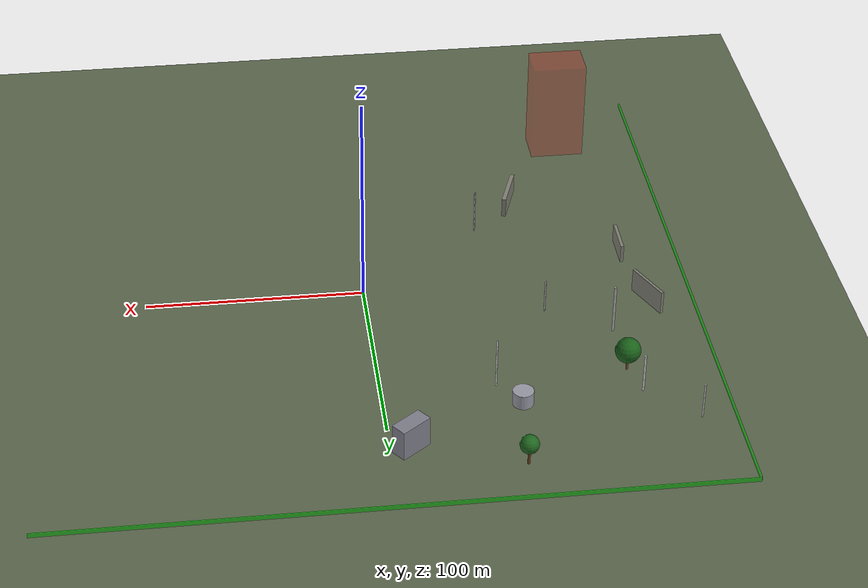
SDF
<sdf version="1.9">
 <world name="training_variant_006">
  <model name="ground_plane">
   <static>true</static>
   <link name="link">
    <collision name="collision">
     <geometry><plane><normal>0 0 1</normal><size>500 500</size></plane></geometry>
     <surface><friction><ode><mu>100</mu><mu2>50</mu2></ode></friction></surface>
    </collision>
    <visual name="visual">
     <geometry><plane><normal>0 0 1</normal><size>500 500</size></plane></geometry>
     <material><ambient>0.35 0.4 0.3 1</ambient><diffuse>0.35 0.4 0.3 1</diffuse></material>
    </visual>
   </link>
  </model>
  <model name="geofence_north">
   <static>true</static>
   <pose>0 150.0 1 0 0 0</pose>
   <link name="link">
    <visual name="visual">
     <geometry><box><size>300.0 0.5 2</size></box></geometry>
     <material>
      <ambient>0 0.8 0 0.6</ambient>
      <diffuse>0 0.8 0 0.6</diffuse>
      <emissive>0 0.2 0 1</emissive>
     </material>
    </visual>
   </link>
  </model>
  <model name="geofence_west">
   <static>true</static>
   <pose>-150.0 0 1 0 0 0</pose>
   <link name="link">
    <visual name="visual">
     <geometry><box><size>0.5 300.0 2</size></box></geometry>
     <material>
      <ambient>0 0.8 0 0.6</ambient>
      <diffuse>0 0.8 0 0.6</diffuse>
      <emissive>0 0.2 0 1</emissive>
     </material>
    </visual>
   </link>
  </model>
  <model name="nfz_2_volume">
   <static>true</static>
   <pose>-109.30489048823372 -116.15220633216012 25.02507445597574 0 0 0</pose>
   <link name="link">
    <visual name="visual">
     <geometry><box><size>25.90237489561391 18.155441028923065 50.05014891195148</size></box></geometry>
     <material><ambient>1 0 0 0.25</ambient><diffuse>1 0 0 0.25</diffuse></material>
    </visual>
   </link>
  </model>
  <model name="obstacle_pole_1">
   <static>true</static>
   <pose>-108.96854140373007 41.456324150693206 11.868041964522185 0 0 0.0</pose>
   <link name="link">
    <visual name="visual">
     <geometry>
      <cylinder><radius>0.5898261438462362</radius><length>23.73608392904437</length></cylinder>
     </geometry>
     <material><ambient>0.65 0.65 0.65 1.0</ambient><diffuse>0.65 0.65 0.65 1.0</diffuse></material>
    </visual>
    <collision name="collision">
     <geometry>
      <cylinder><radius>0.5898261438462362</radius><length>23.73608392904437</length></cylinder>
     </geometry>
    </collision>
   </link>
  </model>
  <model name="obstacle_wall_2">
   <static>true</static>
   <pose>-123.51263008274883 -19.94377028147619 4.415365022803199 0 0 1.567297042484768</pose>
   <link name="link">
    <visual name="visual">
     <geometry><box><size>18.3484552260835 1.5085854988911418 8.830730045606398</size></box></geometry>
     <material><ambient>0.5 0.5 0.45 1.0</ambient><diffuse>0.5 0.5 0.45 1.0</diffuse></material>
    </visual>
    <collision name="collision">
     <geometry><box><size>18.3484552260835 1.5085854988911418 8.830730045606398</size></box></geometry>
    </collision>
   </link>
  </model>
  <model name="obstacle_pole_3">
   <static>true</static>
   <pose>-58.02719171641989 -44.83748787614252 10.99072551534093 0 0 0.0</pose>
   <link name="link">
    <visual name="visual">
     <geometry>
      <cylinder><radius>0.33865140763655305</radius><length>21.98145103068186</length></cylinder>
     </geometry>
     <material><ambient>0.7 0.7 0.7 1.0</ambient><diffuse>0.7 0.7 0.7 1.0</diffuse></material>
    </visual>
    <collision name="collision">
     <geometry>
      <cylinder><radius>0.33865140763655305</radius><length>21.98145103068186</length></cylinder>
     </geometry>
    </collision>
   </link>
  </model>
  <model name="obstacle_pole_4">
   <static>true</static>
   <pose>-135.21048826418954 106.3141081219795 8.825070211591456 0 0 0.0</pose>
   <link name="link">
    <visual name="visual">
     <geometry>
      <cylinder><radius>0.3715744575975428</radius><length>17.65014042318291</length></cylinder>
     </geometry>
     <material><ambient>0.7 0.7 0.7 1.0</ambient><diffuse>0.7 0.7 0.7 1.0</diffuse></material>
    </visual>
    <collision name="collision">
     <geometry>
      <cylinder><radius>0.3715744575975428</radius><length>17.65014042318291</length></cylinder>
     </geometry>
    </collision>
   </link>
  </model>
  <model name="obstacle_wall_8">
   <static>true</static>
   <pose>-128.94347733105735 21.248478264428428 5.6593015711721995 0 0 2.0077017126568104</pose>
   <link name="link">
    <visual name="visual">
     <geometry><box><size>21.72372777396623 1.4223040001081664 11.318603142344399</size></box></geometry>
     <material><ambient>0.48 0.48 0.44 1.0</ambient><diffuse>0.48 0.48 0.44 1.0</diffuse></material>
    </visual>
    <collision name="collision">
     <geometry><box><size>21.72372777396623 1.4223040001081664 11.318603142344399</size></box></geometry>
    </collision>
   </link>
  </model>
  <model name="obstacle_building_9">
   <static>true</static>
   <pose>-8.819301693982268 112.72898037307885 7.134403814662522 0 0 0.6509597289842135</pose>
   <link name="link">
    <visual name="visual">
     <geometry><box><size>15.255683504827452 7.395678996261646 14.268807629325044</size></box></geometry>
     <material><ambient>0.5 0.5 0.55 1.0</ambient><diffuse>0.5 0.5 0.55 1.0</diffuse></material>
    </visual>
    <collision name="collision">
     <geometry><box><size>15.255683504827452 7.395678996261646 14.268807629325044</size></box></geometry>
    </collision>
   </link>
  </model>
  <model name="obstacle_tank_10">
   <static>true</static>
   <pose>-60.33687777212573 88.44235684406826 3.465457994313822 0 0 0.0</pose>
   <link name="link">
    <visual name="visual">
     <geometry><cylinder><radius>4.658123410437648</radius><length>6.930915988627644</length></cylinder></geometry>
     <material><ambient>0.6 0.6 0.65 1.0</ambient><diffuse>0.6 0.6 0.65 1.0</diffuse></material>
    </visual>
    <collision name="collision">
     <geometry><cylinder><radius>4.658123410437648</radius><length>6.930915988627644</length></cylinder></geometry>
    </collision>
   </link>
  </model>
  <model name="obstacle_pole_13">
   <static>true</static>
   <pose>-113.71092610891175 85.50673279065074 9.338659603050797 0 0 0.0</pose>
   <link name="link">
    <visual name="visual">
     <geometry>
      <cylinder><radius>0.49284421951144847</radius><length>18.677319206101593</length></cylinder>
     </geometry>
     <material><ambient>0.75 0.75 0.75 1.0</ambient><diffuse>0.75 0.75 0.75 1.0</diffuse></material>
    </visual>
    <collision name="collision">
     <geometry>
      <cylinder><radius>0.49284421951144847</radius><length>18.677319206101593</length></cylinder>
     </geometry>
    </collision>
   </link>
  </model>
  <model name="obstacle_wall_15">
   <static>true</static>
   <pose>-77.7169740210859 -66.16128793303206 4.8105938071364545 0 0 1.2402937335296624</pose>
   <link name="link">
    <visual name="visual">
     <geometry><box><size>22.860964896523974 1.9949993839941933 9.621187614272909</size></box></geometry>
     <material><ambient>0.5 0.5 0.45 1.0</ambient><diffuse>0.5 0.5 0.45 1.0</diffuse></material>
    </visual>
    <collision name="collision">
     <geometry><box><size>22.860964896523974 1.9949993839941933 9.621187614272909</size></box></geometry>
    </collision>
   </link>
  </model>
  <model name="obstacle_pole_17">
   <static>true</static>
   <pose>-50.59804139919707 74.79110171433874 12.195542024967581 0 0 0.0</pose>
   <link name="link">
    <visual name="visual">
     <geometry>
      <cylinder><radius>0.3692134044021136</radius><length>24.391084049935163</length></cylinder>
     </geometry>
     <material><ambient>0.75 0.75 0.75 1.0</ambient><diffuse>0.75 0.75 0.75 1.0</diffuse></material>
    </visual>
    <collision name="collision">
     <geometry>
      <cylinder><radius>0.3692134044021136</radius><length>24.391084049935163</length></cylinder>
     </geometry>
    </collision>
   </link>
  </model>
  <model name="obstacle_pole_18">
   <static>true</static>
   <pose>-80.77860880635136 23.132531587834222 8.155687147428441 0 0 0.0</pose>
   <link name="link">
    <visual name="visual">
     <geometry>
      <cylinder><radius>0.35766253591995917</radius><length>16.311374294856883</length></cylinder>
     </geometry>
     <material><ambient>0.65 0.65 0.65 1.0</ambient><diffuse>0.65 0.65 0.65 1.0</diffuse></material>
    </visual>
    <collision name="collision">
     <geometry>
      <cylinder><radius>0.35766253591995917</radius><length>16.311374294856883</length></cylinder>
     </geometry>
    </collision>
   </link>
  </model>
  <model name="obstacle_tree_21">
   <static>true</static>
   <pose>-109.65289622505585 69.8763842767388 0 0 0 0.0</pose>
   <link name="link">
    <visual name="trunk">
     <pose>0 0 3.380804341109689 0 0 0</pose>
     <geometry>
      <cylinder><radius>0.5456184584579553</radius><length>6.761608682219378</length></cylinder>
     </geometry>
     <material><ambient>0.42 0.27 0.12 1.0</ambient><diffuse>0.42 0.27 0.12 1.0</diffuse></material>
    </visual>
    <visual name="canopy">
     <pose>0 0 10.23053680042325 0 0 0</pose>
     <geometry><sphere><radius>5.781546863673122</radius></sphere></geometry>
     <material><ambient>0.1 0.38 0.1 1.0</ambient><diffuse>0.1 0.38 0.1 1.0</diffuse></material>
    </visual>
    <collision name="collision">
     <pose>0 0 9.16235120478281 0 0 0</pose>
     <geometry><cylinder><radius>5.781546863673122</radius><length>18.32470240956562</length></cylinder></geometry>
    </collision>
   </link>
  </model>
  <model name="obstacle_tree_22">
   <static>true</static>
   <pose>-56.406806459511515 128.01874829184354 0 0 0 0.0</pose>
   <link name="link">
    <visual name="trunk">
     <pose>0 0 3.90586461404646 0 0 0</pose>
     <geometry><cylinder><radius>0.598927511574218</radius><length>7.81172922809292</length></cylinder></geometry>
     <material><ambient>0.38 0.22 0.08 1.0</ambient><diffuse>0.38 0.22 0.08 1.0</diffuse></material>
    </visual>
    <visual name="canopy">
     <pose>0 0 10.330229342986085 0 0 0</pose>
     <geometry><sphere><radius>4.197500191488608</radius></sphere></geometry>
     <material><ambient>0.12 0.4 0.12 1.0</ambient><diffuse>0.12 0.4 0.12 1.0</diffuse></material>
    </visual>
    <collision name="collision">
     <pose>0 0 8.103364805535069 0 0 0</pose>
     <geometry>
      <cylinder><radius>4.197500191488608</radius><length>16.206729611070138</length></cylinder>
     </geometry>
    </collision>
   </link>
  </model>
 </world>
</sdf>
